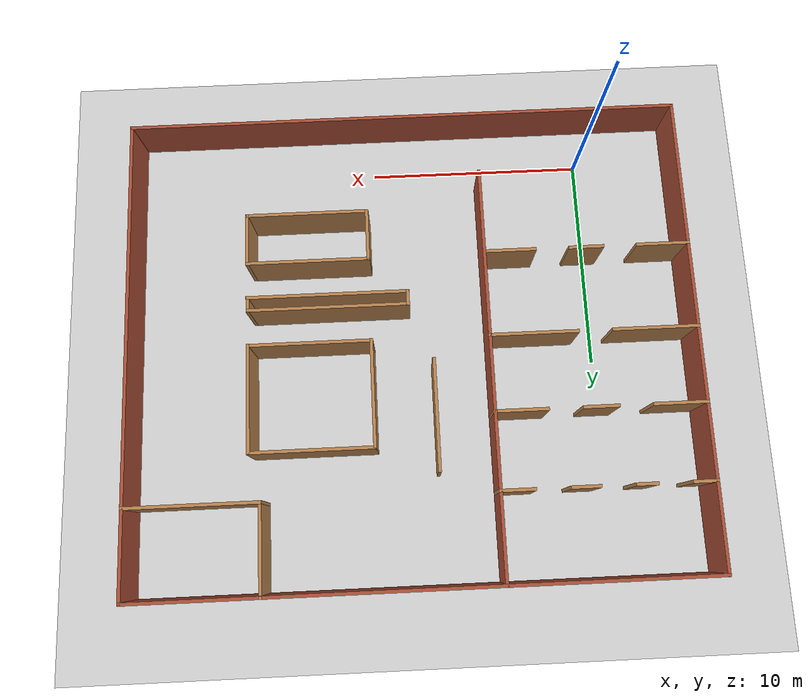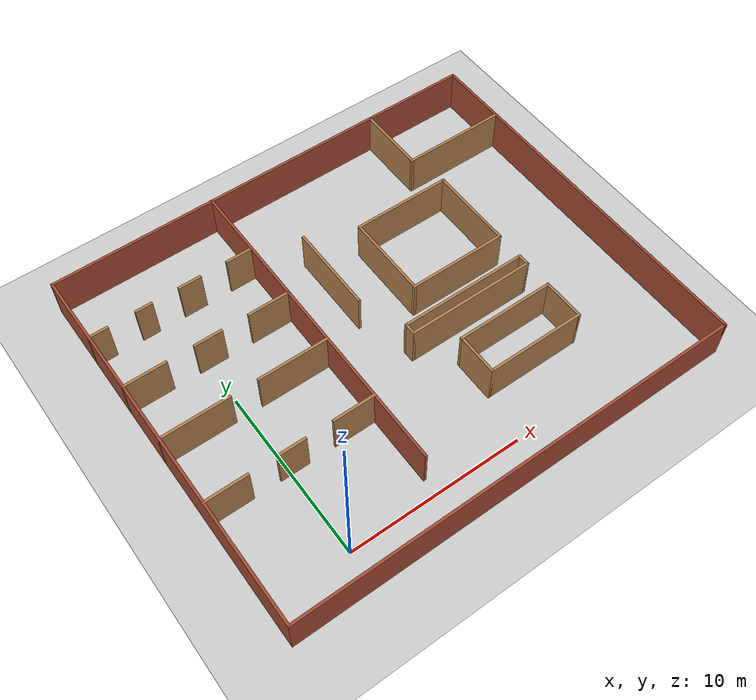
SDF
<sdf version="1.6">
 <world name="default">
  <light name="sun" type="directional">
   <pose>0 0 10 0 -0 0</pose>
   <diffuse>0.8 0.8 0.8 1</diffuse>
   <specular>0.2 0.2 0.2 1</specular>
   <attenuation>
    <range>1000</range>
    <constant>0.9</constant>
    <linear>0.01</linear>
    <quadratic>0.001</quadratic>
   </attenuation>
   <direction>-0.5 0.1 -0.9</direction>
  </light>
  <model name="ground_plane">
   <static>1</static>
   <link name="link">
    <collision name="collision">
     <geometry><plane><normal>0 0 1</normal><size>100 100</size></plane></geometry>
     <surface><friction><ode><mu>100</mu><mu2>50</mu2></ode></friction></surface>
    </collision>
    <visual name="visual">
     <cast_shadows>0</cast_shadows>
     <geometry><plane><normal>0 0 1</normal><size>100 100</size></plane></geometry>
     <material>
      <script><uri>file://media/materials/scripts/gazebo.material</uri><name>Gazebo/Grey</name></script>
     </material>
    </visual>
   </link>
  </model>
  <gravity>0 0 -9.8</gravity>
  <magnetic_field>6e-06 2.3e-05 -4.2e-05</magnetic_field>
  <atmosphere type="adiabatic"/>
  <physics name="default_physics" default="0" type="ode">
   <max_step_size>0.001</max_step_size>
   <real_time_factor>1</real_time_factor>
   <real_time_update_rate>1000</real_time_update_rate>
  </physics>
  <scene><ambient>0.4 0.4 0.4 1</ambient><background>0.7 0.7 0.7 1</background><shadows>1</shadows></scene>
  <spherical_coordinates>
   <surface_model>EARTH_WGS84</surface_model>
   <latitude_deg>0</latitude_deg>
   <longitude_deg>0</longitude_deg>
   <elevation>0</elevation>
   <heading_deg>0</heading_deg>
  </spherical_coordinates>
  <model name="POMDP_test">
   <pose>8.5 9 0 0 -0 0</pose>
   <link name="Wall_11">
    <collision name="Wall_11_Collision">
     <geometry><box><size>5.75 0.15 2.5</size></box></geometry>
     <pose>0 0 1.25 0 -0 0</pose>
    </collision>
    <visual name="Wall_11_Visual">
     <pose>0 0 1.25 0 -0 0</pose>
     <geometry><box><size>5.75 0.15 2.5</size></box></geometry>
     <material>
      <script><uri>file://media/materials/scripts/gazebo.material</uri><name>Gazebo/Wood</name></script>
      <ambient>1 1 1 1</ambient>
     </material>
     <meta><layer>0</layer></meta>
    </visual>
    <pose>4.7 4.85 0 0 -0 0</pose>
   </link>
   <link name="Wall_12">
    <collision name="Wall_12_Collision">
     <geometry><box><size>5 0.15 2.5</size></box></geometry>
     <pose>0 0 1.25 0 -0 0</pose>
    </collision>
    <visual name="Wall_12_Visual">
     <pose>0 0 1.25 0 -0 0</pose>
     <geometry><box><size>5 0.15 2.5</size></box></geometry>
     <material>
      <script><uri>file://media/materials/scripts/gazebo.material</uri><name>Gazebo/Wood</name></script>
      <ambient>1 1 1 1</ambient>
     </material>
     <meta><layer>0</layer></meta>
    </visual>
    <pose>7.5 2.425 0 0 -0 -1.5708</pose>
   </link>
   <link name="Wall_13">
    <collision name="Wall_13_Collision">
     <geometry><box><size>5.75 0.15 2.5</size></box></geometry>
     <pose>0 0 1.25 0 -0 0</pose>
    </collision>
    <visual name="Wall_13_Visual">
     <pose>0 0 1.25 0 -0 0</pose>
     <geometry><box><size>5.75 0.15 2.5</size></box></geometry>
     <material>
      <script><uri>file://media/materials/scripts/gazebo.material</uri><name>Gazebo/Wood</name></script>
      <ambient>1 1 1 1</ambient>
     </material>
     <meta><layer>0</layer></meta>
    </visual>
    <pose>4.7 0 0 0 -0 3.14159</pose>
   </link>
   <link name="Wall_14">
    <collision name="Wall_14_Collision">
     <geometry><box><size>5 0.15 2.5</size></box></geometry>
     <pose>0 0 1.25 0 -0 0</pose>
    </collision>
    <visual name="Wall_14_Visual">
     <pose>0 0 1.25 0 -0 0</pose>
     <geometry><box><size>5 0.15 2.5</size></box></geometry>
     <material>
      <script><uri>file://media/materials/scripts/gazebo.material</uri><name>Gazebo/Wood</name></script>
      <ambient>1 1 1 1</ambient>
     </material>
     <meta><layer>0</layer></meta>
    </visual>
    <pose>1.9 2.425 0 0 -0 1.5708</pose>
   </link>
   <link name="Wall_18">
    <collision name="Wall_18_Collision">
     <geometry><box><size>7.5 0.15 2.5</size></box></geometry>
     <pose>0 0 1.25 0 -0 0</pose>
    </collision>
    <visual name="Wall_18_Visual">
     <pose>0 0 1.25 0 -0 0</pose>
     <geometry><box><size>7.5 0.15 2.5</size></box></geometry>
     <material>
      <script><uri>file://media/materials/scripts/gazebo.material</uri><name>Gazebo/Wood</name></script>
      <ambient>1 1 1 1</ambient>
     </material>
     <meta><layer>0</layer></meta>
    </visual>
    <pose>3.825 -1.65 0 0 -0 3.14159</pose>
   </link>
   <link name="Wall_19">
    <collision name="Wall_19_Collision">
     <geometry><box><size>0.75 0.15 2.5</size></box></geometry>
     <pose>0 0 1.25 0 -0 0</pose>
    </collision>
    <visual name="Wall_19_Visual">
     <pose>0 0 1.25 0 -0 0</pose>
     <geometry><box><size>0.75 0.15 2.5</size></box></geometry>
     <material>
      <script><uri>file://media/materials/scripts/gazebo.material</uri><name>Gazebo/Wood</name></script>
      <ambient>1 1 1 1</ambient>
     </material>
     <meta><layer>0</layer></meta>
    </visual>
    <pose>0.15 -1.95 0 0 -0 -1.5708</pose>
   </link>
   <link name="Wall_20">
    <collision name="Wall_20_Collision">
     <geometry><box><size>7.5 0.15 2.5</size></box></geometry>
     <pose>0 0 1.25 0 -0 0</pose>
    </collision>
    <visual name="Wall_20_Visual">
     <pose>0 0 1.25 0 -0 0</pose>
     <geometry><box><size>7.5 0.15 2.5</size></box></geometry>
     <material>
      <script><uri>file://media/materials/scripts/gazebo.material</uri><name>Gazebo/Wood</name></script>
      <ambient>1 1 1 1</ambient>
     </material>
     <meta><layer>0</layer></meta>
    </visual>
    <pose>3.825 -2.25 0 0 -0 0</pose>
   </link>
   <link name="Wall_21">
    <collision name="Wall_21_Collision">
     <geometry><box><size>0.75 0.15 2.5</size></box></geometry>
     <pose>0 0 1.25 0 -0 0</pose>
    </collision>
    <visual name="Wall_21_Visual">
     <pose>0 0 1.25 0 -0 0</pose>
     <geometry><box><size>0.75 0.15 2.5</size></box></geometry>
     <material>
      <script><uri>file://media/materials/scripts/gazebo.material</uri><name>Gazebo/Wood</name></script>
      <ambient>1 1 1 1</ambient>
     </material>
     <meta><layer>0</layer></meta>
    </visual>
    <pose>7.5 -1.95 0 0 -0 1.5708</pose>
   </link>
   <link name="Wall_25">
    <collision name="Wall_25_Collision">
     <geometry><box><size>5.75 0.15 2.5</size></box></geometry>
     <pose>0 0 1.25 0 -0 0</pose>
    </collision>
    <visual name="Wall_25_Visual">
     <pose>0 0 1.25 0 -0 0</pose>
     <geometry><box><size>5.75 0.15 2.5</size></box></geometry>
     <material>
      <script><uri>file://media/materials/scripts/gazebo.material</uri><name>Gazebo/Wood</name></script>
      <ambient>1 1 1 1</ambient>
     </material>
     <meta><layer>0</layer></meta>
    </visual>
    <pose>4.7 -3.9 0 0 -0 3.14159</pose>
   </link>
   <link name="Wall_27">
    <collision name="Wall_27_Collision">
     <geometry><box><size>2.5 0.15 2.5</size></box></geometry>
     <pose>0 0 1.25 0 -0 0</pose>
    </collision>
    <visual name="Wall_27_Visual">
     <pose>0 0 1.25 0 -0 0</pose>
     <geometry><box><size>2.5 0.15 2.5</size></box></geometry>
     <material>
      <script><uri>file://media/materials/scripts/gazebo.material</uri><name>Gazebo/Wood</name></script>
      <ambient>1 1 1 1</ambient>
     </material>
     <meta><layer>0</layer></meta>
    </visual>
    <pose>1.9 -5.075 0 0 -0 -1.5708</pose>
   </link>
   <link name="Wall_28">
    <collision name="Wall_28_Collision">
     <geometry><box><size>5.75 0.15 2.5</size></box></geometry>
     <pose>0 0 1.25 0 -0 0</pose>
    </collision>
    <visual name="Wall_28_Visual">
     <pose>0 0 1.25 0 -0 0</pose>
     <geometry><box><size>5.75 0.15 2.5</size></box></geometry>
     <material>
      <script><uri>file://media/materials/scripts/gazebo.material</uri><name>Gazebo/Wood</name></script>
      <ambient>1 1 1 1</ambient>
     </material>
     <meta><layer>0</layer></meta>
    </visual>
    <pose>4.7 -6.25 0 0 -0 0</pose>
   </link>
   <link name="Wall_29">
    <collision name="Wall_29_Collision">
     <geometry><box><size>2.5 0.15 2.5</size></box></geometry>
     <pose>0 0 1.25 0 -0 0</pose>
    </collision>
    <visual name="Wall_29_Visual">
     <pose>0 0 1.25 0 -0 0</pose>
     <geometry><box><size>2.5 0.15 2.5</size></box></geometry>
     <material>
      <script><uri>file://media/materials/scripts/gazebo.material</uri><name>Gazebo/Wood</name></script>
      <ambient>1 1 1 1</ambient>
     </material>
     <meta><layer>0</layer></meta>
    </visual>
    <pose>7.5 -5.075 0 0 -0 1.5708</pose>
   </link>
   <link name="Wall_33">
    <collision name="Wall_33_Collision">
     <geometry><box><size>19.15 0.15 2.5</size></box></geometry>
     <pose>0 0 1.25 0 -0 0</pose>
    </collision>
    <visual name="Wall_33_Visual">
     <pose>0 0 1.25 0 -0 0</pose>
     <geometry><box><size>19.15 0.15 2.5</size></box></geometry>
     <material>
      <script><uri>file://media/materials/scripts/gazebo.material</uri><name>Gazebo/Bricks</name></script>
      <ambient>1 1 1 1</ambient>
     </material>
     <meta><layer>0</layer></meta>
    </visual>
    <pose>-3.5 1.5 0 0 -0 1.5708</pose>
   </link>
   <link name="Wall_35">
    <collision name="Wall_35_Collision">
     <geometry><box><size>6.15 0.15 2.5</size></box></geometry>
     <pose>0 0 1.25 0 -0 0</pose>
    </collision>
    <visual name="Wall_35_Visual">
     <pose>0 0 1.25 0 -0 0</pose>
     <geometry><box><size>6.15 0.15 2.5</size></box></geometry>
     <material>
      <script><uri>file://media/materials/scripts/gazebo.material</uri><name>Gazebo/Wood</name></script>
      <ambient>1 1 1 1</ambient>
     </material>
     <meta><layer>0</layer></meta>
    </visual>
    <pose>10 7 0 0 -0 3.14159</pose>
   </link>
   <link name="Wall_36">
    <collision name="Wall_36_Collision">
     <geometry><box><size>4.15 0.15 2.5</size></box></geometry>
     <pose>0 0 1.25 0 -0 0</pose>
    </collision>
    <visual name="Wall_36_Visual">
     <pose>0 0 1.25 0 -0 0</pose>
     <geometry><box><size>4.15 0.15 2.5</size></box></geometry>
     <material>
      <script><uri>file://media/materials/scripts/gazebo.material</uri><name>Gazebo/Wood</name></script>
      <ambient>1 1 1 1</ambient>
     </material>
     <meta><layer>0</layer></meta>
    </visual>
    <pose>7 9 0 0 -0 1.5708</pose>
   </link>
   <link name="Wall_38">
    <collision name="Wall_38_Collision">
     <geometry><box><size>5.15 0.15 2.5</size></box></geometry>
     <pose>0 0 1.25 0 -0 0</pose>
    </collision>
    <visual name="Wall_38_Visual">
     <pose>0 0 1.25 0 -0 0</pose>
     <geometry><box><size>5.15 0.15 2.5</size></box></geometry>
     <material>
      <script><uri>file://media/materials/scripts/gazebo.material</uri><name>Gazebo/Wood</name></script>
      <ambient>1 1 1 1</ambient>
     </material>
     <meta><layer>0</layer></meta>
    </visual>
    <pose>-0.9 3.5 0 0 -0 -1.5708</pose>
   </link>
   <link name="Wall_4">
    <collision name="Wall_4_Collision">
     <geometry><box><size>26.15 0.15 2.5</size></box></geometry>
     <pose>0 0 1.25 0 -0 0</pose>
    </collision>
    <visual name="Wall_4_Visual">
     <pose>0 0 1.25 0 -0 0</pose>
     <geometry><box><size>26.15 0.15 2.5</size></box></geometry>
     <material>
      <script><uri>file://media/materials/scripts/gazebo.material</uri><name>Gazebo/Bricks</name></script>
      <ambient>1 1 1 1</ambient>
     </material>
     <meta><layer>0</layer></meta>
    </visual>
    <pose>0 -11 0 0 -0 0</pose>
   </link>
   <link name="Wall_40">
    <collision name="Wall_40_Collision">
     <geometry><box><size>1.15 0.15 2.5</size></box></geometry>
     <pose>0 0 1.25 0 -0 0</pose>
    </collision>
    <visual name="Wall_40_Visual">
     <pose>0 0 1.25 0 -0 0</pose>
     <geometry><box><size>1.15 0.15 2.5</size></box></geometry>
     <material>
      <script><uri>file://media/materials/scripts/gazebo.material</uri><name>Gazebo/Wood</name></script>
      <ambient>1 1 1 1</ambient>
     </material>
     <meta><layer>0</layer></meta>
    </visual>
    <pose>-12.5 7 0 0 -0 0</pose>
   </link>
   <link name="Wall_42">
    <collision name="Wall_42_Collision">
     <geometry><box><size>1 0.15 2.5</size></box></geometry>
     <pose>0 0 1.25 0 -0 0</pose>
    </collision>
    <visual name="Wall_42_Visual">
     <pose>0 0 1.25 0 -0 0</pose>
     <geometry><box><size>1 0.15 2.5</size></box></geometry>
     <material>
      <script><uri>file://media/materials/scripts/gazebo.material</uri><name>Gazebo/Wood</name></script>
      <ambient>1 1 1 1</ambient>
     </material>
     <meta><layer>0</layer></meta>
    </visual>
    <pose>-9.925 7 0 0 -0 0</pose>
   </link>
   <link name="Wall_44">
    <collision name="Wall_44_Collision">
     <geometry><box><size>1.35 0.15 2.5</size></box></geometry>
     <pose>0 0 1.25 0 -0 0</pose>
    </collision>
    <visual name="Wall_44_Visual">
     <pose>0 0 1.25 0 -0 0</pose>
     <geometry><box><size>1.35 0.15 2.5</size></box></geometry>
     <material>
      <script><uri>file://media/materials/scripts/gazebo.material</uri><name>Gazebo/Wood</name></script>
      <ambient>1 1 1 1</ambient>
     </material>
     <meta><layer>0</layer></meta>
    </visual>
    <pose>-7.25 7 0 0 -0 0</pose>
   </link>
   <link name="Wall_46">
    <collision name="Wall_46_Collision">
     <geometry><box><size>1.65 0.15 2.5</size></box></geometry>
     <pose>0 0 1.25 0 -0 0</pose>
    </collision>
    <visual name="Wall_46_Visual">
     <pose>0 0 1.25 0 -0 0</pose>
     <geometry><box><size>1.65 0.15 2.5</size></box></geometry>
     <material>
      <script><uri>file://media/materials/scripts/gazebo.material</uri><name>Gazebo/Wood</name></script>
      <ambient>1 1 1 1</ambient>
     </material>
     <meta><layer>0</layer></meta>
    </visual>
    <pose>-4.25 7 0 0 -0 0</pose>
   </link>
   <link name="Wall_50">
    <collision name="Wall_50_Collision">
     <geometry><box><size>2.5 0.15 2.5</size></box></geometry>
     <pose>0 0 1.25 0 -0 0</pose>
    </collision>
    <visual name="Wall_50_Visual">
     <pose>0 0 1.25 0 -0 0</pose>
     <geometry><box><size>2.5 0.15 2.5</size></box></geometry>
     <material>
      <script><uri>file://media/materials/scripts/gazebo.material</uri><name>Gazebo/Wood</name></script>
      <ambient>1 1 1 1</ambient>
     </material>
     <meta><layer>0</layer></meta>
    </visual>
    <pose>-11.825 3.5 0 0 -0 0</pose>
   </link>
   <link name="Wall_53">
    <collision name="Wall_53_Collision">
     <geometry><box><size>1.65 0.15 2.5</size></box></geometry>
     <pose>0 0 1.25 0 -0 0</pose>
    </collision>
    <visual name="Wall_53_Visual">
     <pose>0 0 1.25 0 -0 0</pose>
     <geometry><box><size>1.65 0.15 2.5</size></box></geometry>
     <material>
      <script><uri>file://media/materials/scripts/gazebo.material</uri><name>Gazebo/Wood</name></script>
      <ambient>1 1 1 1</ambient>
     </material>
     <meta><layer>0</layer></meta>
    </visual>
    <pose>-8.25 3.5 0 0 -0 0</pose>
   </link>
   <link name="Wall_55">
    <collision name="Wall_55_Collision">
     <geometry><box><size>2.5 0.15 2.5</size></box></geometry>
     <pose>0 0 1.25 0 -0 0</pose>
    </collision>
    <visual name="Wall_55_Visual">
     <pose>0 0 1.25 0 -0 0</pose>
     <geometry><box><size>2.5 0.15 2.5</size></box></geometry>
     <material>
      <script><uri>file://media/materials/scripts/gazebo.material</uri><name>Gazebo/Wood</name></script>
      <ambient>1 1 1 1</ambient>
     </material>
     <meta><layer>0</layer></meta>
    </visual>
    <pose>-4.675 3.5 0 0 -0 0</pose>
   </link>
   <link name="Wall_57">
    <collision name="Wall_57_Collision">
     <geometry><box><size>4 0.15 2.5</size></box></geometry>
     <pose>0 0 1.25 0 -0 0</pose>
    </collision>
    <visual name="Wall_57_Visual">
     <pose>0 0 1.25 0 -0 0</pose>
     <geometry><box><size>4 0.15 2.5</size></box></geometry>
     <material>
      <script><uri>file://media/materials/scripts/gazebo.material</uri><name>Gazebo/Wood</name></script>
      <ambient>1 1 1 1</ambient>
     </material>
     <meta><layer>0</layer></meta>
    </visual>
    <pose>-11.075 0 0 0 -0 0</pose>
   </link>
   <link name="Wall_59">
    <collision name="Wall_59_Collision">
     <geometry><box><size>4.15 0.15 2.5</size></box></geometry>
     <pose>0 0 1.25 0 -0 0</pose>
    </collision>
    <visual name="Wall_59_Visual">
     <pose>0 0 1.25 0 -0 0</pose>
     <geometry><box><size>4.15 0.15 2.5</size></box></geometry>
     <material>
      <script><uri>file://media/materials/scripts/gazebo.material</uri><name>Gazebo/Wood</name></script>
      <ambient>1 1 1 1</ambient>
     </material>
     <meta><layer>0</layer></meta>
    </visual>
    <pose>-5.5 0 0 0 -0 0</pose>
   </link>
   <link name="Wall_6">
    <collision name="Wall_6_Collision">
     <geometry><box><size>22.15 0.15 2.5</size></box></geometry>
     <pose>0 0 1.25 0 -0 0</pose>
    </collision>
    <visual name="Wall_6_Visual">
     <pose>0 0 1.25 0 -0 0</pose>
     <geometry><box><size>22.15 0.15 2.5</size></box></geometry>
     <material>
      <script><uri>file://media/materials/scripts/gazebo.material</uri><name>Gazebo/Bricks</name></script>
      <ambient>1 1 1 1</ambient>
     </material>
     <meta><layer>0</layer></meta>
    </visual>
    <pose>13 0 0 0 -0 1.5708</pose>
   </link>
   <link name="Wall_61">
    <collision name="Wall_61_Collision">
     <geometry><box><size>2.5 0.15 2.5</size></box></geometry>
     <pose>0 0 1.25 0 -0 0</pose>
    </collision>
    <visual name="Wall_61_Visual">
     <pose>0 0 1.25 0 -0 0</pose>
     <geometry><box><size>2.5 0.15 2.5</size></box></geometry>
     <material>
      <script><uri>file://media/materials/scripts/gazebo.material</uri><name>Gazebo/Wood</name></script>
      <ambient>1 1 1 1</ambient>
     </material>
     <meta><layer>0</layer></meta>
    </visual>
    <pose>-11.825 -4 0 0 -0 0</pose>
   </link>
   <link name="Wall_63">
    <collision name="Wall_63_Collision">
     <geometry><box><size>1.65 0.15 2.5</size></box></geometry>
     <pose>0 0 1.25 0 -0 0</pose>
    </collision>
    <visual name="Wall_63_Visual">
     <pose>0 0 1.25 0 -0 0</pose>
     <geometry><box><size>1.65 0.15 2.5</size></box></geometry>
     <material>
      <script><uri>file://media/materials/scripts/gazebo.material</uri><name>Gazebo/Wood</name></script>
      <ambient>1 1 1 1</ambient>
     </material>
     <meta><layer>0</layer></meta>
    </visual>
    <pose>-8.25 -4 0 0 -0 0</pose>
   </link>
   <link name="Wall_65">
    <collision name="Wall_65_Collision">
     <geometry><box><size>2.5 0.15 2.5</size></box></geometry>
     <pose>0 0 1.25 0 -0 0</pose>
    </collision>
    <visual name="Wall_65_Visual">
     <pose>0 0 1.25 0 -0 0</pose>
     <geometry><box><size>2.5 0.15 2.5</size></box></geometry>
     <material>
      <script><uri>file://media/materials/scripts/gazebo.material</uri><name>Gazebo/Wood</name></script>
      <ambient>1 1 1 1</ambient>
     </material>
     <meta><layer>0</layer></meta>
    </visual>
    <pose>-4.675 -4 0 0 -0 0</pose>
   </link>
   <link name="Wall_8">
    <collision name="Wall_8_Collision">
     <geometry><box><size>26.15 0.15 2.5</size></box></geometry>
     <pose>0 0 1.25 0 -0 0</pose>
    </collision>
    <visual name="Wall_8_Visual">
     <pose>0 0 1.25 0 -0 0</pose>
     <geometry><box><size>26.15 0.15 2.5</size></box></geometry>
     <material>
      <script><uri>file://media/materials/scripts/gazebo.material</uri><name>Gazebo/Bricks</name></script>
      <ambient>1 1 1 1</ambient>
     </material>
     <meta><layer>0</layer></meta>
    </visual>
    <pose>0 11 0 0 -0 3.14159</pose>
   </link>
   <link name="Wall_9">
    <collision name="Wall_9_Collision">
     <geometry><box><size>22.15 0.15 2.5</size></box></geometry>
     <pose>0 0 1.25 0 -0 0</pose>
    </collision>
    <visual name="Wall_9_Visual">
     <pose>0 0 1.25 0 -0 0</pose>
     <geometry><box><size>22.15 0.15 2.5</size></box></geometry>
     <material>
      <script><uri>file://media/materials/scripts/gazebo.material</uri><name>Gazebo/Bricks</name></script>
      <ambient>1 1 1 1</ambient>
     </material>
     <meta><layer>0</layer></meta>
    </visual>
    <pose>-13 0 0 0 -0 -1.5708</pose>
   </link>
   <static>1</static>
  </model>
 </world>
</sdf>
